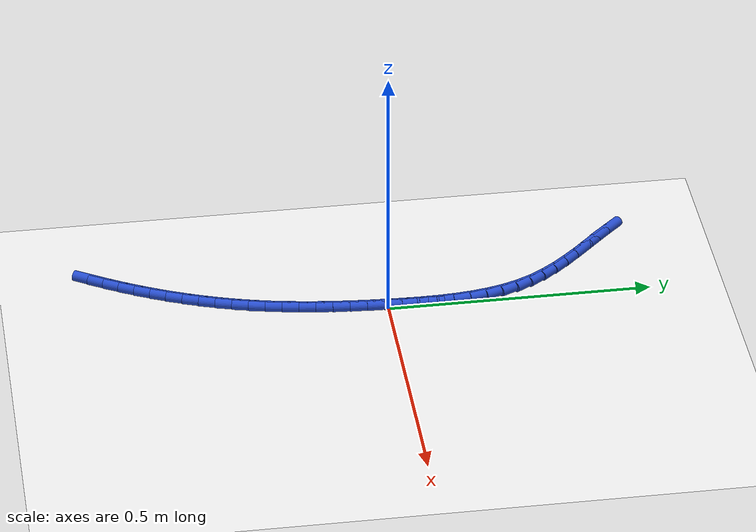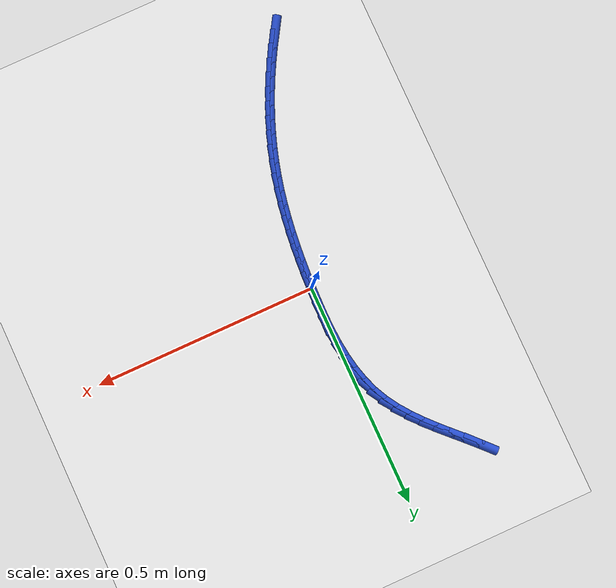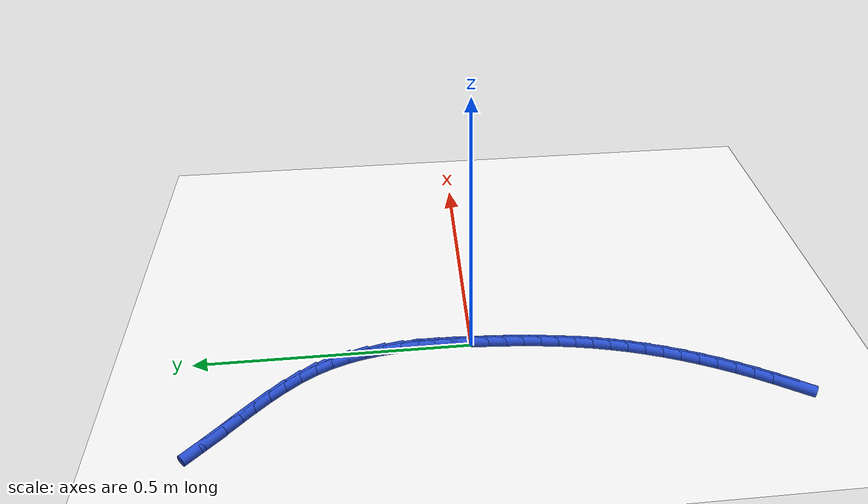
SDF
<sdf version="1.6">
 <world name="default">
  <model name="ground_plane">
   <static>1</static>
   <link name="link">
    <collision name="collision">
     <geometry><plane><normal>0 0 1</normal><size>100 100</size></plane></geometry>
     <surface><friction><ode><mu>100</mu><mu2>50</mu2></ode></friction></surface>
    </collision>
    <visual name="visual">
     <cast_shadows>0</cast_shadows>
     <geometry><plane><normal>0 0 1</normal><size>100 100</size></plane></geometry>
     <material>
      <script><uri>file://media/materials/scripts/gazebo.material</uri><name>Gazebo/WhiteGlow</name></script>
     </material>
    </visual>
   </link>
  </model>
  <model name="line">
   <link name="link_0">
    <pose>1.202109158743303e-17 4.85722573273506e-17 0.01 0 1.57 1.536072615759685</pose>
    <collision name="collision">
     <geometry><cylinder><radius>0.01</radius><length>0.08</length></cylinder></geometry>
    </collision>
    <visual name="visual">
     <material>
      <script><name>Gazebo/Blue</name><uri>file://media/materials/scripts/gazebo.material</uri></script>
     </material>
     <geometry><cylinder><radius>0.01</radius><length>0.08</length></cylinder></geometry>
    </visual>
   </link>
   <link name="link_1">
    <pose>0.0011326819208036815 0.032606729291152346 0.01 0 1.57 1.5589145146190735</pose>
    <collision name="collision">
     <geometry><cylinder><radius>0.01</radius><length>0.08</length></cylinder></geometry>
    </collision>
    <visual name="visual">
     <material>
      <script><name>Gazebo/Blue</name><uri>file://media/materials/scripts/gazebo.material</uri></script>
     </material>
     <geometry><cylinder><radius>0.01</radius><length>0.08</length></cylinder></geometry>
    </visual>
   </link>
   <link name="link_2">
    <pose>0.0015214863202614101 0.06532784091339212 0.01 0 1.57 -1.5504343009876833</pose>
    <collision name="collision">
     <geometry><cylinder><radius>0.01</radius><length>0.08</length></cylinder></geometry>
    </collision>
    <visual name="visual">
     <material>
      <script><name>Gazebo/Blue</name><uri>file://media/materials/scripts/gazebo.material</uri></script>
     </material>
     <geometry><cylinder><radius>0.01</radius><length>0.08</length></cylinder></geometry>
    </visual>
   </link>
   <link name="link_3">
    <pose>0.000857016418377326 0.09795613012275681 0.01 0 1.57 -1.5081733999187839</pose>
    <collision name="collision">
     <geometry><cylinder><radius>0.01</radius><length>0.08</length></cylinder></geometry>
    </collision>
    <visual name="visual">
     <material>
      <script><name>Gazebo/Blue</name><uri>file://media/materials/scripts/gazebo.material</uri></script>
     </material>
     <geometry><cylinder><radius>0.01</radius><length>0.08</length></cylinder></geometry>
    </visual>
   </link>
   <link name="link_4">
    <pose>-0.0011701245648444445 0.1302843921752838 0.01 0 1.57 -1.4550653542667014</pose>
    <collision name="collision">
     <geometry><cylinder><radius>0.01</radius><length>0.08</length></cylinder></geometry>
    </collision>
    <visual name="visual">
     <material>
      <script><name>Gazebo/Blue</name><uri>file://media/materials/scripts/gazebo.material</uri></script>
     </material>
     <geometry><cylinder><radius>0.01</radius><length>0.08</length></cylinder></geometry>
    </visual>
   </link>
   <link name="link_5">
    <pose>-0.004869333409399776 0.16210542232701045 0.01 0 1.57 -1.390167169293847</pose>
    <collision name="collision">
     <geometry><cylinder><radius>0.01</radius><length>0.08</length></cylinder></geometry>
    </collision>
    <visual name="visual">
     <material>
      <script><name>Gazebo/Blue</name><uri>file://media/materials/scripts/gazebo.material</uri></script>
     </material>
     <geometry><cylinder><radius>0.01</radius><length>0.08</length></cylinder></geometry>
    </visual>
   </link>
   <link name="link_6">
    <pose>-0.010550006895284549 0.1932120158339743 0.01 0 1.57 -1.3126013579753837</pose>
    <collision name="collision">
     <geometry><cylinder><radius>0.01</radius><length>0.08</length></cylinder></geometry>
    </collision>
    <visual name="visual">
     <material>
      <script><name>Gazebo/Blue</name><uri>file://media/materials/scripts/gazebo.material</uri></script>
     </material>
     <geometry><cylinder><radius>0.01</radius><length>0.08</length></cylinder></geometry>
    </visual>
   </link>
   <link name="link_7">
    <pose>-0.01852154180249463 0.22339696795221253 0.01 0 1.57 -1.2218448880958819</pose>
    <collision name="collision">
     <geometry><cylinder><radius>0.01</radius><length>0.08</length></cylinder></geometry>
    </collision>
    <visual name="visual">
     <material>
      <script><name>Gazebo/Blue</name><uri>file://media/materials/scripts/gazebo.material</uri></script>
     </material>
     <geometry><cylinder><radius>0.01</radius><length>0.08</length></cylinder></geometry>
    </visual>
   </link>
   <link name="link_8">
    <pose>-0.02909333491102589 0.2524530739377627 0.01 0 1.57 -1.1184145608843261</pose>
    <collision name="collision">
     <geometry><cylinder><radius>0.01</radius><length>0.08</length></cylinder></geometry>
    </collision>
    <visual name="visual">
     <material>
      <script><name>Gazebo/Blue</name><uri>file://media/materials/scripts/gazebo.material</uri></script>
     </material>
     <geometry><cylinder><radius>0.01</radius><length>0.08</length></cylinder></geometry>
    </visual>
   </link>
   <link name="link_9">
    <pose>-0.04256716096853313 0.28017722478052437 0.01 0 1.57 -1.0159180892134962</pose>
    <collision name="collision">
     <geometry><cylinder><radius>0.01</radius><length>0.08</length></cylinder></geometry>
    </collision>
    <visual name="visual">
     <material>
      <script><name>Gazebo/Blue</name><uri>file://media/materials/scripts/gazebo.material</uri></script>
     </material>
     <geometry><cylinder><radius>0.01</radius><length>0.08</length></cylinder></geometry>
    </visual>
   </link>
   <link name="link_10">
    <pose>-0.05891123488468257 0.3065455513715708 0.01 0 1.57 -0.9323607290424752</pose>
    <collision name="collision">
     <geometry><cylinder><radius>0.01</radius><length>0.08</length></cylinder></geometry>
    </collision>
    <visual name="visual">
     <material>
      <script><name>Gazebo/Blue</name><uri>file://media/materials/scripts/gazebo.material</uri></script>
     </material>
     <geometry><cylinder><radius>0.01</radius><length>0.08</length></cylinder></geometry>
    </visual>
   </link>
   <link name="link_11">
    <pose>-0.07763759050579071 0.3317793155781889 0.01 0 1.57 -0.868684158812069</pose>
    <collision name="collision">
     <geometry><cylinder><radius>0.01</radius><length>0.08</length></cylinder></geometry>
    </collision>
    <visual name="visual">
     <material>
      <script><name>Gazebo/Blue</name><uri>file://media/materials/scripts/gazebo.material</uri></script>
     </material>
     <geometry><cylinder><radius>0.01</radius><length>0.08</length></cylinder></geometry>
    </visual>
   </link>
   <link name="link_12">
    <pose>-0.09822535942757539 0.3561174594421772 0.01 0 1.57 -0.8238173163707225</pose>
    <collision name="collision">
     <geometry><cylinder><radius>0.01</radius><length>0.08</length></cylinder></geometry>
    </collision>
    <visual name="visual">
     <material>
      <script><name>Gazebo/Blue</name><uri>file://media/materials/scripts/gazebo.material</uri></script>
     </material>
     <geometry><cylinder><radius>0.01</radius><length>0.08</length></cylinder></geometry>
    </visual>
   </link>
   <link name="link_13">
    <pose>-0.1201536732457546 0.3797989250053344 0.01 0 1.57 -0.7966065555392438</pose>
    <collision name="collision">
     <geometry><cylinder><radius>0.01</radius><length>0.08</length></cylinder></geometry>
    </collision>
    <visual name="visual">
     <material>
      <script><name>Gazebo/Blue</name><uri>file://media/materials/scripts/gazebo.material</uri></script>
     </material>
     <geometry><cylinder><radius>0.01</radius><length>0.08</length></cylinder></geometry>
    </visual>
   </link>
   <link name="link_14">
    <pose>-0.14290166355604628 0.40306265430945915 0.01 0 1.57 -0.7862248542065737</pose>
    <collision name="collision">
     <geometry><cylinder><radius>0.01</radius><length>0.08</length></cylinder></geometry>
    </collision>
    <visual name="visual">
     <material>
      <script><name>Gazebo/Blue</name><uri>file://media/materials/scripts/gazebo.material</uri></script>
     </material>
     <geometry><cylinder><radius>0.01</radius><length>0.08</length></cylinder></geometry>
    </visual>
   </link>
   <link name="link_15">
    <pose>-0.16594846195416818 0.4261475893963499 0.01 0 1.57 -0.7923666404888908</pose>
    <collision name="collision">
     <geometry><cylinder><radius>0.01</radius><length>0.08</length></cylinder></geometry>
    </collision>
    <visual name="visual">
     <material>
      <script><name>Gazebo/Blue</name><uri>file://media/materials/scripts/gazebo.material</uri></script>
     </material>
     <geometry><cylinder><radius>0.01</radius><length>0.08</length></cylinder></geometry>
    </visual>
   </link>
   <link name="link_16">
    <pose>-0.18877320003583842 0.4492926723078053 0.01 0 1.57 -0.8153142004422874</pose>
    <collision name="collision">
     <geometry><cylinder><radius>0.01</radius><length>0.08</length></cylinder></geometry>
    </collision>
    <visual name="visual">
     <material>
      <script><name>Gazebo/Blue</name><uri>file://media/materials/scripts/gazebo.material</uri></script>
     </material>
     <geometry><cylinder><radius>0.01</radius><length>0.08</length></cylinder></geometry>
    </visual>
   </link>
   <link name="link_212">
    <pose>-0.15822289729650943 -0.5400062409693176 0.01 0 1.57 1.0199240524292548</pose>
    <collision name="collision">
     <geometry><cylinder><radius>0.01</radius><length>0.08</length></cylinder></geometry>
    </collision>
    <visual name="visual">
     <material>
      <script><name>Gazebo/Blue</name><uri>file://media/materials/scripts/gazebo.material</uri></script>
     </material>
     <geometry><cylinder><radius>0.01</radius><length>0.08</length></cylinder></geometry>
    </visual>
   </link>
   <link name="link_213">
    <pose>-0.1416950280047406 -0.5131012964428352 0.01 0 1.57 1.0491343975598648</pose>
    <collision name="collision">
     <geometry><cylinder><radius>0.01</radius><length>0.08</length></cylinder></geometry>
    </collision>
    <visual name="visual">
     <material>
      <script><name>Gazebo/Blue</name><uri>file://media/materials/scripts/gazebo.material</uri></script>
     </material>
     <geometry><cylinder><radius>0.01</radius><length>0.08</length></cylinder></geometry>
    </visual>
   </link>
   <link name="link_214">
    <pose>-0.1259081039089786 -0.48563482258600404 0.01 0 1.57 1.0789915321717383</pose>
    <collision name="collision">
     <geometry><cylinder><radius>0.01</radius><length>0.08</length></cylinder></geometry>
    </collision>
    <visual name="visual">
     <material>
      <script><name>Gazebo/Blue</name><uri>file://media/materials/scripts/gazebo.material</uri></script>
     </material>
     <geometry><cylinder><radius>0.01</radius><length>0.08</length></cylinder></geometry>
    </visual>
   </link>
   <link name="link_215">
    <pose>-0.11091336766940049 -0.4576443536532823 0.01 0 1.57 1.1093925321729199</pose>
    <collision name="collision">
     <geometry><cylinder><radius>0.01</radius><length>0.08</length></cylinder></geometry>
    </collision>
    <visual name="visual">
     <material>
      <script><name>Gazebo/Blue</name><uri>file://media/materials/scripts/gazebo.material</uri></script>
     </material>
     <geometry><cylinder><radius>0.01</radius><length>0.08</length></cylinder></geometry>
    </visual>
   </link>
   <link name="link_216">
    <pose>-0.09675932647636509 -0.42917675996627547 0.01 0 1.57 1.1404624842247735</pose>
    <collision name="collision">
     <geometry><cylinder><radius>0.01</radius><length>0.08</length></cylinder></geometry>
    </collision>
    <visual name="visual">
     <material>
      <script><name>Gazebo/Blue</name><uri>file://media/materials/scripts/gazebo.material</uri></script>
     </material>
     <geometry><cylinder><radius>0.01</radius><length>0.08</length></cylinder></geometry>
    </visual>
   </link>
   <link name="link_217">
    <pose>-0.08349448752023003 -0.40027891184658676 0.01 0 1.57 1.1723263984942451</pose>
    <collision name="collision">
     <geometry><cylinder><radius>0.01</radius><length>0.08</length></cylinder></geometry>
    </collision>
    <visual name="visual">
     <material>
      <script><name>Gazebo/Blue</name><uri>file://media/materials/scripts/gazebo.material</uri></script>
     </material>
     <geometry><cylinder><radius>0.01</radius><length>0.08</length></cylinder></geometry>
    </visual>
   </link>
   <link name="link_218">
    <pose>-0.07116735799135344 -0.3709976796158204 0.01 0 1.57 1.205109496224913</pose>
    <collision name="collision">
     <geometry><cylinder><radius>0.01</radius><length>0.08</length></cylinder></geometry>
    </collision>
    <visual name="visual">
     <material>
      <script><name>Gazebo/Blue</name><uri>file://media/materials/scripts/gazebo.material</uri></script>
     </material>
     <geometry><cylinder><radius>0.01</radius><length>0.08</length></cylinder></geometry>
    </visual>
   </link>
   <link name="link_219">
    <pose>-0.05982644508009321 -0.34137993359557994 0.01 0 1.57 1.2389372051446497</pose>
    <collision name="collision">
     <geometry><cylinder><radius>0.01</radius><length>0.08</length></cylinder></geometry>
    </collision>
    <visual name="visual">
     <material>
      <script><name>Gazebo/Blue</name><uri>file://media/materials/scripts/gazebo.material</uri></script>
     </material>
     <geometry><cylinder><radius>0.01</radius><length>0.08</length></cylinder></geometry>
    </visual>
   </link>
   <link name="link_220">
    <pose>-0.04952025597680788 -0.31147254410747066 0.01 0 1.57 1.2739348079576116</pose>
    <collision name="collision">
     <geometry><cylinder><radius>0.01</radius><length>0.08</length></cylinder></geometry>
    </collision>
    <visual name="visual">
     <material>
      <script><name>Gazebo/Blue</name><uri>file://media/materials/scripts/gazebo.material</uri></script>
     </material>
     <geometry><cylinder><radius>0.01</radius><length>0.08</length></cylinder></geometry>
    </visual>
   </link>
   <link name="link_221">
    <pose>-0.0402972978718553 -0.2813223814730961 0.01 0 1.57 1.310086965454614</pose>
    <collision name="collision">
     <geometry><cylinder><radius>0.01</radius><length>0.08</length></cylinder></geometry>
    </collision>
    <visual name="visual">
     <material>
      <script><name>Gazebo/Blue</name><uri>file://media/materials/scripts/gazebo.material</uri></script>
     </material>
     <geometry><cylinder><radius>0.01</radius><length>0.08</length></cylinder></geometry>
    </visual>
   </link>
   <link name="link_222">
    <pose>-0.03220086515897238 -0.25097379878021026 0.01 0 1.57 1.345497820553712</pose>
    <collision name="collision">
     <geometry><cylinder><radius>0.01</radius><length>0.08</length></cylinder></geometry>
    </collision>
    <visual name="visual">
     <material>
      <script><name>Gazebo/Blue</name><uri>file://media/materials/scripts/gazebo.material</uri></script>
     </material>
     <geometry><cylinder><radius>0.01</radius><length>0.08</length></cylinder></geometry>
    </visual>
   </link>
   <link name="link_223">
    <pose>-0.02520197817579277 -0.22043624833034162 0.01 0 1.57 1.3785777205389547</pose>
    <collision name="collision">
     <geometry><cylinder><radius>0.01</radius><length>0.08</length></cylinder></geometry>
    </collision>
    <visual name="visual">
     <material>
      <script><name>Gazebo/Blue</name><uri>file://media/materials/scripts/gazebo.material</uri></script>
     </material>
     <geometry><cylinder><radius>0.01</radius><length>0.08</length></cylinder></geometry>
    </visual>
   </link>
   <link name="link_224">
    <pose>-0.019218810431396477 -0.18969366295143053 0.01 0 1.57 1.4091133064802066</pose>
    <collision name="collision">
     <geometry><cylinder><radius>0.01</radius><length>0.08</length></cylinder></geometry>
    </collision>
    <visual name="visual">
     <material>
      <script><name>Gazebo/Blue</name><uri>file://media/materials/scripts/gazebo.material</uri></script>
     </material>
     <geometry><cylinder><radius>0.01</radius><length>0.08</length></cylinder></geometry>
    </visual>
   </link>
   <link name="link_225">
    <pose>-0.014168327854721463 -0.1587293923369038 0.01 0 1.57 1.4369702193255576</pose>
    <collision name="collision">
     <geometry><cylinder><radius>0.01</radius><length>0.08</length></cylinder></geometry>
    </collision>
    <visual name="visual">
     <material>
      <script><name>Gazebo/Blue</name><uri>file://media/materials/scripts/gazebo.material</uri></script>
     </material>
     <geometry><cylinder><radius>0.01</radius><length>0.08</length></cylinder></geometry>
    </visual>
   </link>
   <link name="link_226">
    <pose>-0.009967496374705847 -0.12752678618018898 0.01 0 1.57 1.462057292201237</pose>
    <collision name="collision">
     <geometry><cylinder><radius>0.01</radius><length>0.08</length></cylinder></geometry>
    </collision>
    <visual name="visual">
     <material>
      <script><name>Gazebo/Blue</name><uri>file://media/materials/scripts/gazebo.material</uri></script>
     </material>
     <geometry><cylinder><radius>0.01</radius><length>0.08</length></cylinder></geometry>
    </visual>
   </link>
   <link name="link_227">
    <pose>-0.0065332819202877646 -0.09606919417471368 0.01 0 1.57 1.4843217427857152</pose>
    <collision name="collision">
     <geometry><cylinder><radius>0.01</radius><length>0.08</length></cylinder></geometry>
    </collision>
    <visual name="visual">
     <material>
      <script><name>Gazebo/Blue</name><uri>file://media/materials/scripts/gazebo.material</uri></script>
     </material>
     <geometry><cylinder><radius>0.01</radius><length>0.08</length></cylinder></geometry>
    </visual>
   </link>
   <link name="link_228">
    <pose>-0.0037826504204052824 -0.06433996601390468 0.01 0 1.57 1.5037436721345443</pose>
    <collision name="collision">
     <geometry><cylinder><radius>0.01</radius><length>0.08</length></cylinder></geometry>
    </collision>
    <visual name="visual">
     <material>
      <script><name>Gazebo/Blue</name><uri>file://media/materials/scripts/gazebo.material</uri></script>
     </material>
     <geometry><cylinder><radius>0.01</radius><length>0.08</length></cylinder></geometry>
    </visual>
   </link>
   <link name="link_229">
    <pose>-0.0016325678039966747 -0.032322451391191186 0.01 0 1.57 1.5203304260570367</pose>
    <collision name="collision">
     <geometry><cylinder><radius>0.01</radius><length>0.08</length></cylinder></geometry>
    </collision>
    <visual name="visual">
     <material>
      <script><name>Gazebo/Blue</name><uri>file://media/materials/scripts/gazebo.material</uri></script>
     </material>
     <geometry><cylinder><radius>0.01</radius><length>0.08</length></cylinder></geometry>
    </visual>
   </link>
   <link name="link_230">
    <pose>6.35613523619627e-18 -2.0816681711721685e-17 0.01 0 1.57 1.534111234801472</pose>
    <collision name="collision">
     <geometry><cylinder><radius>0.01</radius><length>0.08</length></cylinder></geometry>
    </collision>
    <visual name="visual">
     <material>
      <script><name>Gazebo/Blue</name><uri>file://media/materials/scripts/gazebo.material</uri></script>
     </material>
     <geometry><cylinder><radius>0.01</radius><length>0.08</length></cylinder></geometry>
    </visual>
   </link>
   <link name="link_231">
    <pose>0.001198087062646627 0.03264403846624125 0.01 0 1.57 1.545132406211545</pose>
    <collision name="collision">
     <geometry><cylinder><radius>0.01</radius><length>0.08</length></cylinder></geometry>
    </collision>
    <visual name="visual">
     <material>
      <script><name>Gazebo/Blue</name><uri>file://media/materials/scripts/gazebo.material</uri></script>
     </material>
     <geometry><cylinder><radius>0.01</radius><length>0.08</length></cylinder></geometry>
    </visual>
   </link>
   <link name="link_232">
    <pose>0.0020447274550050554 0.06562631431410502 0.01 0 1.57 1.5396492753347775</pose>
    <collision name="collision">
     <geometry><cylinder><radius>0.01</radius><length>0.08</length></cylinder></geometry>
    </collision>
    <visual name="visual">
     <material>
      <script><name>Gazebo/Blue</name><uri>file://media/materials/scripts/gazebo.material</uri></script>
     </material>
     <geometry><cylinder><radius>0.01</radius><length>0.08</length></cylinder></geometry>
    </visual>
   </link>
  </model>
 </world>
</sdf>
